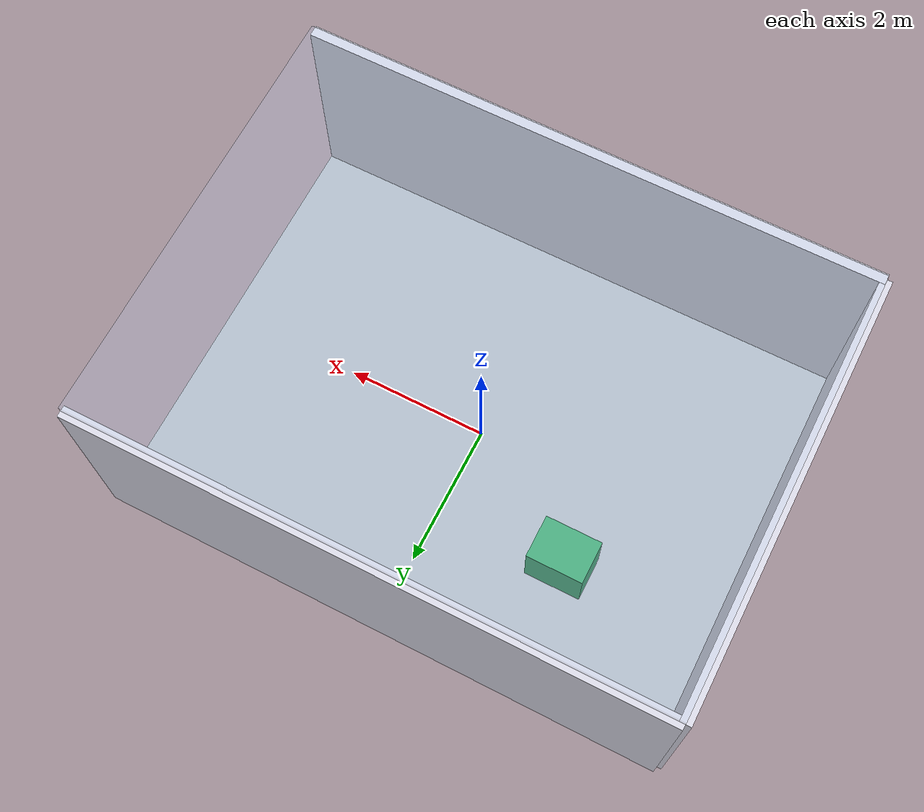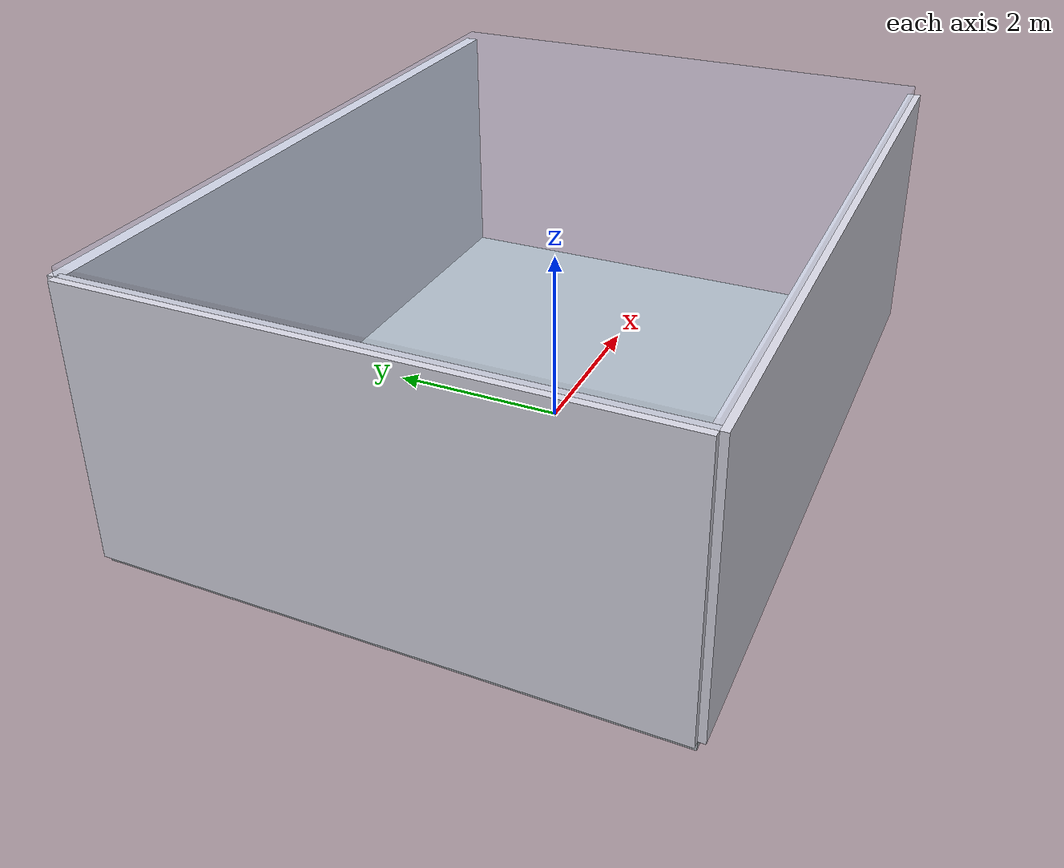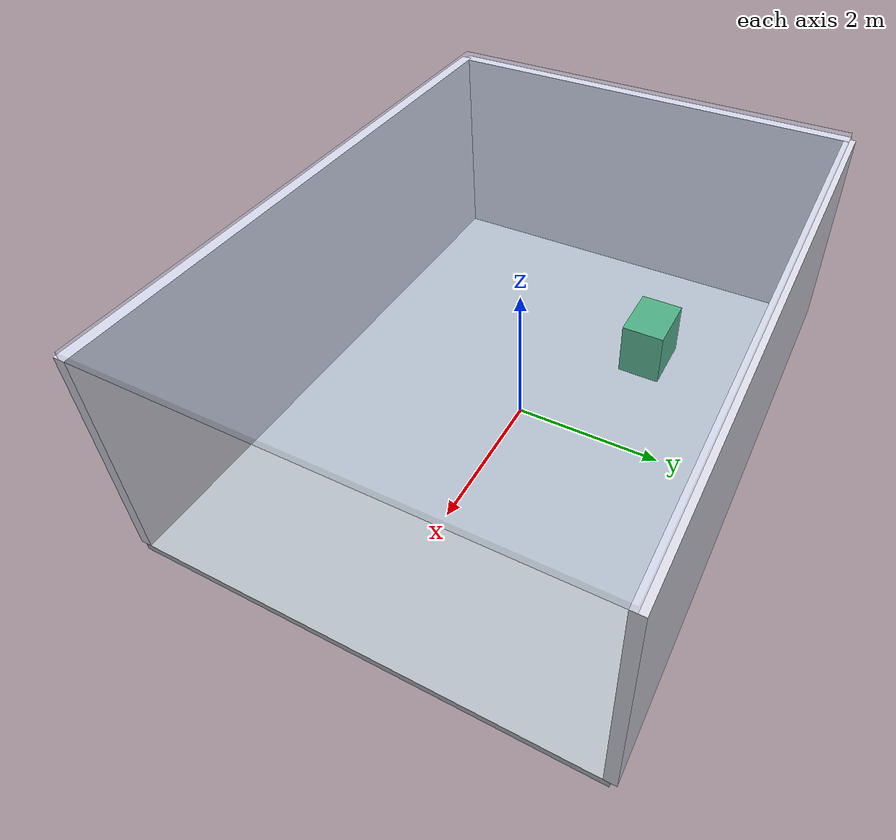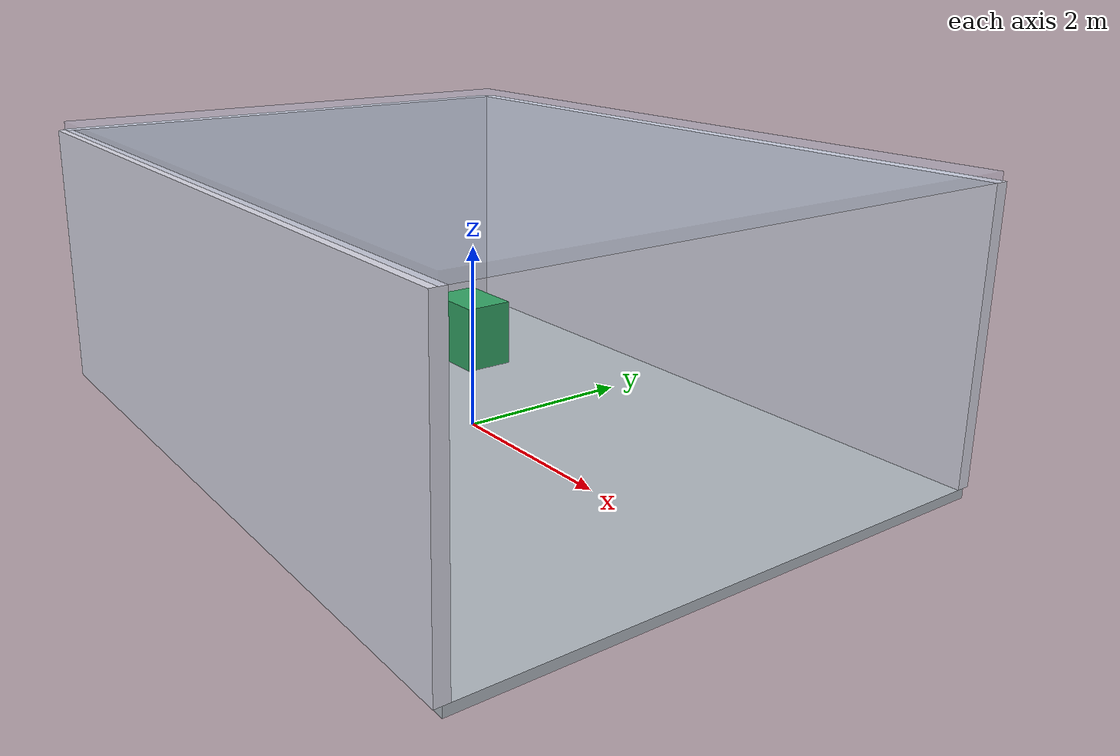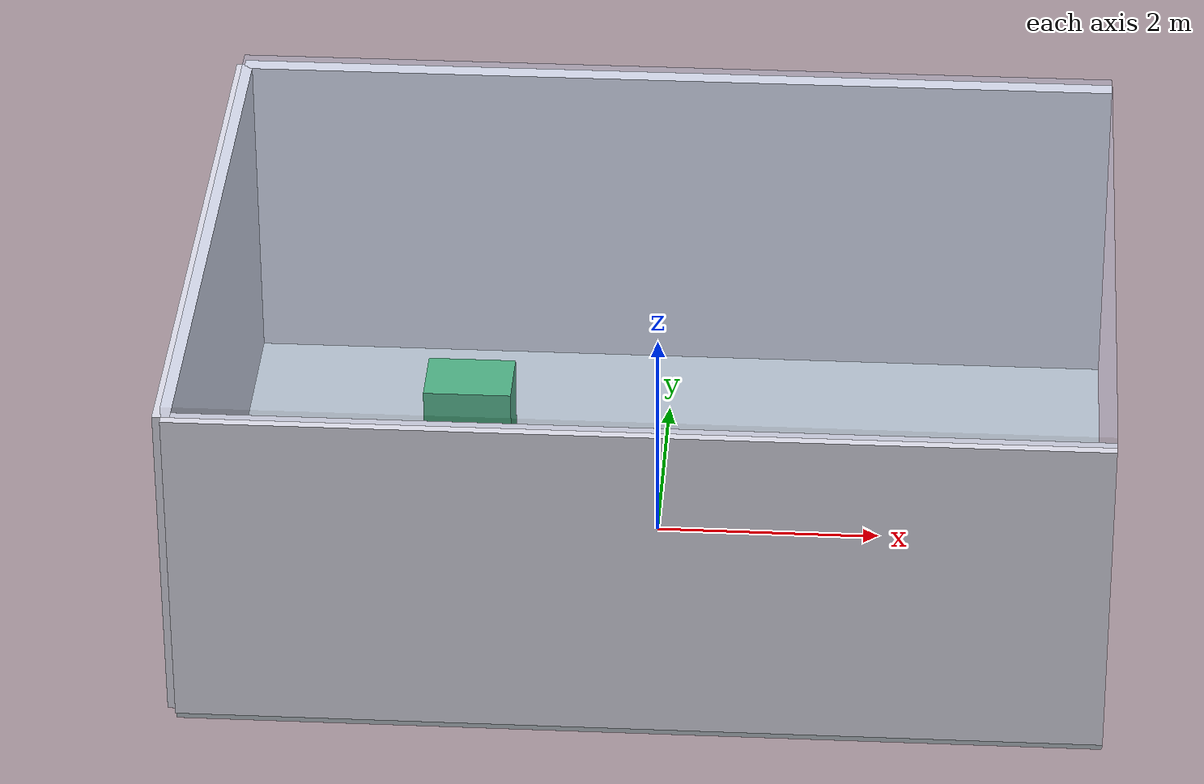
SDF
<sdf version="1.8">
 <world name="ghost_room">
  <model name="floor">
   <static>true</static>
   <pose>0 0 -0.05 0 0 0</pose>
   <link name="link">
    <collision name="collision"><geometry><box><size>8 6 0.1</size></box></geometry></collision>
    <visual name="visual">
     <geometry><box><size>8 6 0.1</size></box></geometry>
     <material><ambient>0.7 0.73 0.76 1</ambient><diffuse>0.7 0.73 0.76 1</diffuse></material>
    </visual>
   </link>
  </model>
  <model name="north">
   <static>true</static>
   <pose>0 3 1.5 0 0 0</pose>
   <link name="link">
    <collision name="collision"><geometry><box><size>8 0.15 3.0</size></box></geometry></collision>
    <visual name="visual">
     <geometry><box><size>8 0.15 3.0</size></box></geometry>
     <material><ambient>0.85 0.85 0.9 1</ambient><diffuse>0.85 0.85 0.9 1</diffuse></material>
    </visual>
   </link>
  </model>
  <model name="south">
   <static>true</static>
   <pose>0 -3 1.5 0 0 0</pose>
   <link name="link">
    <collision name="collision"><geometry><box><size>8 0.15 3.0</size></box></geometry></collision>
    <visual name="visual">
     <geometry><box><size>8 0.15 3.0</size></box></geometry>
     <material><ambient>0.85 0.85 0.9 1</ambient><diffuse>0.85 0.85 0.9 1</diffuse></material>
    </visual>
   </link>
  </model>
  <model name="west">
   <static>true</static>
   <pose>-4 0 1.5 0 0 0</pose>
   <link name="link">
    <collision name="collision"><geometry><box><size>0.15 6 3.0</size></box></geometry></collision>
    <visual name="visual">
     <geometry><box><size>0.15 6 3.0</size></box></geometry>
     <material><ambient>0.85 0.85 0.9 1</ambient><diffuse>0.85 0.85 0.9 1</diffuse></material>
    </visual>
   </link>
  </model>
  <model name="green_box">
   <static>true</static>
   <pose>-1.8 1.2 0.4 0 0 0</pose>
   <link name="link">
    <collision name="collision"><geometry><box><size>0.8 0.6 0.8</size></box></geometry></collision>
    <visual name="visual">
     <geometry><box><size>0.8 0.6 0.8</size></box></geometry>
     <material><ambient>0.2 0.65 0.4 1</ambient><diffuse>0.2 0.65 0.4 1</diffuse></material>
    </visual>
   </link>
  </model>
  <model name="ceiling">
   <static>true</static>
   <pose>0 0 3.05 0 0 0</pose>
   <link name="link">
    <collision name="collision"><geometry><box><size>8 6 0.1</size></box></geometry></collision>
    <visual name="visual">
     <geometry><box><size>8 6 0.1</size></box></geometry>
     <material><diffuse>0.7 0.8 0.95 0.08</diffuse><ambient>0.7 0.8 0.95 0.08</ambient></material>
     <transparency>0.92</transparency>
    </visual>
   </link>
  </model>
 </world>
</sdf>
